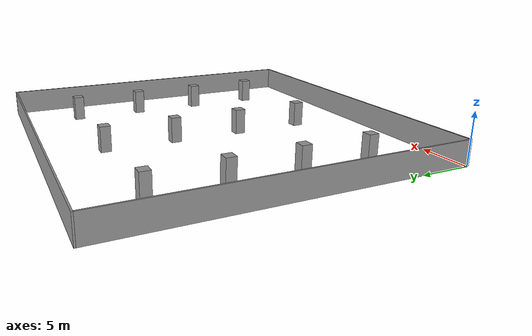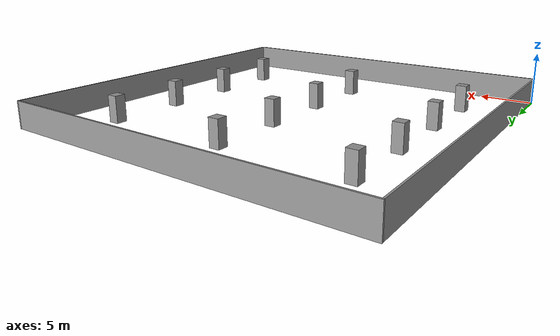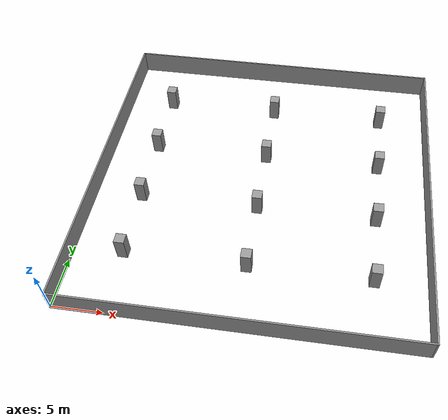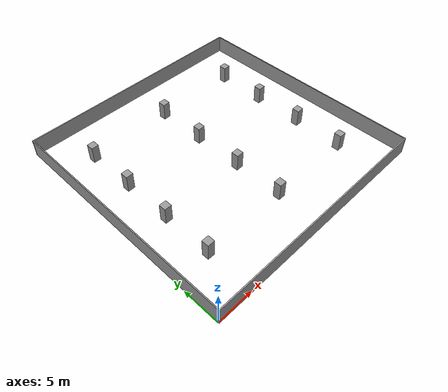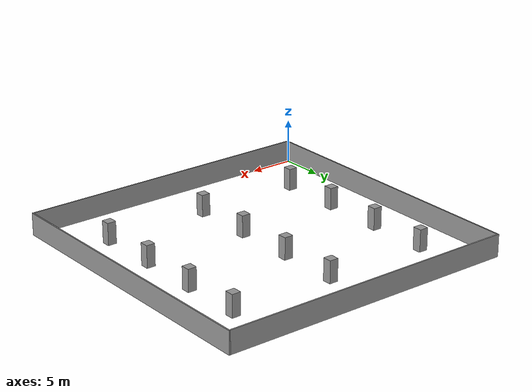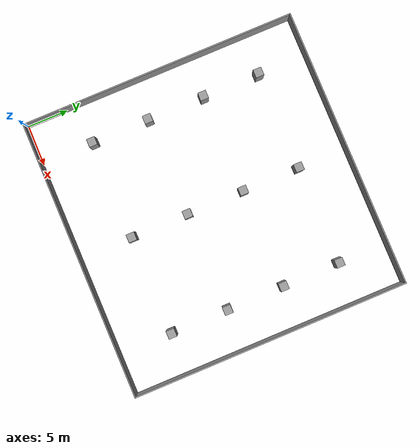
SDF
<?xml version='1.0'?>
<sdf version='1.6'>
  <model name='garage'>
    <pose frame=''>0 0 0 0 0 0</pose>

    <link name='Wall_1'>
      <collision name='Wall_1_Collision'>
        <geometry>
          <box>
            <size>34 0.15 2.5</size>
          </box>
        </geometry>
        <pose frame=''>0 0 1.25 0 -0 0</pose>
      </collision>
      <visual name='Wall_1_Visual'>
        <pose frame=''>0 0 1.25 0 -0 0</pose>
        <geometry>
          <box>
            <size>34 0.15 2.5</size>
          </box>
        </geometry>
        <material>
          <script>
            <uri>file://media/materials/scripts/gazebo.material</uri>
            <name>Gazebo/Grey</name>
          </script>
          <ambient>1 1 1 1</ambient>
        </material>
        <meta>
          <layer>0</layer>
        </meta>
      </visual>
      <pose frame=''>17 -0.075 0 0 0 0</pose>
    </link>

    <link name='Wall_2'>
      <collision name='Wall_2_Collision'>
        <geometry>
          <box>
            <size>0.15 33.8 2.5</size>
          </box>
        </geometry>
        <pose frame=''>0 0 1.25 0 -0 0</pose>
      </collision>
      <visual name='Wall_2_Visual'>
        <pose frame=''>0 0 1.25 0 -0 0</pose>
        <geometry>
          <box>
            <size>0.15 33.8 2.5</size>
          </box>
        </geometry>
        <material>
          <script>
            <uri>file://media/materials/scripts/gazebo.material</uri>
            <name>Gazebo/Grey</name>
          </script>
          <ambient>1 1 1 1</ambient>
        </material>
        <meta>
          <layer>0</layer>
        </meta>
      </visual>
      <pose frame=''>34.075 16.75 0 0 0 0</pose>
    </link>

    <link name='Wall_3'>
      <collision name='Wall_3_Collision'>
        <geometry>
          <box>
            <size>34 0.15 2.5</size>
          </box>
        </geometry>
        <pose frame=''>0 0 1.25 0 -0 0</pose>
      </collision>
      <visual name='Wall_3_Visual'>
        <pose frame=''>0 0 1.25 0 -0 0</pose>
        <geometry>
          <box>
            <size>34 0.15 2.5</size>
          </box>
        </geometry>
        <material>
          <script>
            <uri>file://media/materials/scripts/gazebo.material</uri>
            <name>Gazebo/Grey</name>
          </script>
          <ambient>1 1 1 1</ambient>
        </material>
        <meta>
          <layer>0</layer>
        </meta>
      </visual>
      <pose frame=''>17 33.575 0 0 0 0</pose>
    </link>

    <link name='Wall_4'>
      <collision name='Wall_4_Collision'>
        <geometry>
          <box>
            <size>0.15 33.5 2.5</size>
          </box>
        </geometry>
        <pose frame=''>0 0 1.25 0 -0 0</pose>
      </collision>
      <visual name='Wall_4_Visual'>
        <pose frame=''>0 0 1.25 0 -0 0</pose>
        <geometry>
          <box>
            <size>0.15 33.5 2.5</size>
          </box>
        </geometry>
        <material>
          <script>
            <uri>file://media/materials/scripts/gazebo.material</uri>
            <name>Gazebo/Grey</name>
          </script>
          <ambient>1 1 1 1</ambient>
        </material>
        <meta>
          <layer>0</layer>
        </meta>
      </visual>
      <pose frame=''>0.075 16.75 0 0 0 0</pose>
    </link>

    <link name='pillar_1'>
      <collision name='pillar_1_Collision'>
        <geometry>
          <box>
            <size>1 1 2.5</size>
          </box>
        </geometry>
        <pose frame=''>0 0 1.25 0 -0 0</pose>
      </collision>
      <visual name='pillar_1_Visual'>
        <pose frame=''>0 0 1.25 0 -0 0</pose>
        <geometry>
          <box>
            <size>1 1 2.5</size>
          </box>
        </geometry>
        <material>
          <script>
            <uri>file://media/materials/scripts/gazebo.material</uri>
            <name>Gazebo/Grey</name>
          </script>
          <ambient>1 1 1 1</ambient>
        </material>
        <meta>
          <layer>0</layer>
        </meta>
      </visual>
      <pose frame=''>5 6.5 0 0 0 0</pose>
    </link>

    <link name='pillar_2'>
      <collision name='pillar_2_Collision'>
        <geometry>
          <box>
            <size>1 1 2.5</size>
          </box>
        </geometry>
        <pose frame=''>0 0 1.25 0 -0 0</pose>
      </collision>
      <visual name='pillar_2_Visual'>
        <pose frame=''>0 0 1.25 0 -0 0</pose>
        <geometry>
          <box>
            <size>1 1 2.5</size>
          </box>
        </geometry>
        <material>
          <script>
            <uri>file://media/materials/scripts/gazebo.material</uri>
            <name>Gazebo/Grey</name>
          </script>
          <ambient>1 1 1 1</ambient>
        </material>
        <meta>
          <layer>0</layer>
        </meta>
      </visual>
      <pose frame=''>5 13.5 0 0 0 0</pose>
    </link>

    <link name='pillar_3'>
      <collision name='pillar_3_Collision'>
        <geometry>
          <box>
            <size>1 1 2.5</size>
          </box>
        </geometry>
        <pose frame=''>0 0 1.25 0 -0 0</pose>
      </collision>
      <visual name='pillar_3_Visual'>
        <pose frame=''>0 0 1.25 0 -0 0</pose>
        <geometry>
          <box>
            <size>1 1 2.5</size>
          </box>
        </geometry>
        <material>
          <script>
            <uri>file://media/materials/scripts/gazebo.material</uri>
            <name>Gazebo/Grey</name>
          </script>
          <ambient>1 1 1 1</ambient>
        </material>
        <meta>
          <layer>0</layer>
        </meta>
      </visual>
      <pose frame=''>5 20.5 0 0 0 0</pose>
    </link>

     <link name='pillar_4'>
      <collision name='pillar_4_Collision'>
        <geometry>
          <box>
            <size>1 1 2.5</size>
          </box>
        </geometry>
        <pose frame=''>0 0 1.25 0 -0 0</pose>
      </collision>
      <visual name='pillar_4_Visual'>
        <pose frame=''>0 0 1.25 0 -0 0</pose>
        <geometry>
          <box>
            <size>1 1 2.5</size>
          </box>
        </geometry>
        <material>
          <script>
            <uri>file://media/materials/scripts/gazebo.material</uri>
            <name>Gazebo/Grey</name>
          </script>
          <ambient>1 1 1 1</ambient>
        </material>
        <meta>
          <layer>0</layer>
        </meta>
      </visual>
      <pose frame=''>5 27.5 0 0 0 0</pose>
    </link>

    <link name='pillar_5'>
      <collision name='pillar_5_Collision'>
        <geometry>
          <box>
            <size>1 1 2.5</size>
          </box>
        </geometry>
        <pose frame=''>0 0 1.25 0 -0 0</pose>
      </collision>
      <visual name='pillar_5_Visual'>
        <pose frame=''>0 0 1.25 0 -0 0</pose>
        <geometry>
          <box>
            <size>1 1 2.5</size>
          </box>
        </geometry>
        <material>
          <script>
            <uri>file://media/materials/scripts/gazebo.material</uri>
            <name>Gazebo/Grey</name>
          </script>
          <ambient>1 1 1 1</ambient>
        </material>
        <meta>
          <layer>0</layer>
        </meta>
      </visual>
      <pose frame=''>17 6.5 0 0 0 0</pose>
    </link>

    <link name='pillar_6'>
      <collision name='pillar_6_Collision'>
        <geometry>
          <box>
            <size>1 1 2.5</size>
          </box>
        </geometry>
        <pose frame=''>0 0 1.25 0 -0 0</pose>
      </collision>
      <visual name='pillar_6_Visual'>
        <pose frame=''>0 0 1.25 0 -0 0</pose>
        <geometry>
          <box>
            <size>1 1 2.5</size>
          </box>
        </geometry>
        <material>
          <script>
            <uri>file://media/materials/scripts/gazebo.material</uri>
            <name>Gazebo/Grey</name>
          </script>
          <ambient>1 1 1 1</ambient>
        </material>
        <meta>
          <layer>0</layer>
        </meta>
      </visual>
      <pose frame=''>17 13.5 0 0 0 0</pose>
    </link>

    <link name='pillar_7'>
      <collision name='pillar_7_Collision'>
        <geometry>
          <box>
            <size>1 1 2.5</size>
          </box>
        </geometry>
        <pose frame=''>0 0 1.25 0 -0 0</pose>
      </collision>
      <visual name='pillar_7_Visual'>
        <pose frame=''>0 0 1.25 0 -0 0</pose>
        <geometry>
          <box>
            <size>1 1 2.5</size>
          </box>
        </geometry>
        <material>
          <script>
            <uri>file://media/materials/scripts/gazebo.material</uri>
            <name>Gazebo/Grey</name>
          </script>
          <ambient>1 1 1 1</ambient>
        </material>
        <meta>
          <layer>0</layer>
        </meta>
      </visual>
      <pose frame=''>17 20.5 0 0 0 0</pose>
    </link>

     <link name='pillar_8'>
      <collision name='pillar_8_Collision'>
        <geometry>
          <box>
            <size>1 1 2.5</size>
          </box>
        </geometry>
        <pose frame=''>0 0 1.25 0 -0 0</pose>
      </collision>
      <visual name='pillar_8_Visual'>
        <pose frame=''>0 0 1.25 0 -0 0</pose>
        <geometry>
          <box>
            <size>1 1 2.5</size>
          </box>
        </geometry>
        <material>
          <script>
            <uri>file://media/materials/scripts/gazebo.material</uri>
            <name>Gazebo/Grey</name>
          </script>
          <ambient>1 1 1 1</ambient>
        </material>
        <meta>
          <layer>0</layer>
        </meta>
      </visual>
      <pose frame=''>17 27.5 0 0 0 0</pose>
    </link>

    <link name='pillar_9'>
      <collision name='pillar_9_Collision'>
        <geometry>
          <box>
            <size>1 1 2.5</size>
          </box>
        </geometry>
        <pose frame=''>0 0 1.25 0 -0 0</pose>
      </collision>
      <visual name='pillar_9_Visual'>
        <pose frame=''>0 0 1.25 0 -0 0</pose>
        <geometry>
          <box>
            <size>1 1 2.5</size>
          </box>
        </geometry>
        <material>
          <script>
            <uri>file://media/materials/scripts/gazebo.material</uri>
            <name>Gazebo/Grey</name>
          </script>
          <ambient>1 1 1 1</ambient>
        </material>
        <meta>
          <layer>0</layer>
        </meta>
      </visual>
      <pose frame=''>29 6.5 0 0 0 0</pose>
    </link>

    <link name='pillar_10'>
      <collision name='pillar_10_Collision'>
        <geometry>
          <box>
            <size>1 1 2.5</size>
          </box>
        </geometry>
        <pose frame=''>0 0 1.25 0 -0 0</pose>
      </collision>
      <visual name='pillar_10_Visual'>
        <pose frame=''>0 0 1.25 0 -0 0</pose>
        <geometry>
          <box>
            <size>1 1 2.5</size>
          </box>
        </geometry>
        <material>
          <script>
            <uri>file://media/materials/scripts/gazebo.material</uri>
            <name>Gazebo/Grey</name>
          </script>
          <ambient>1 1 1 1</ambient>
        </material>
        <meta>
          <layer>0</layer>
        </meta>
      </visual>
      <pose frame=''>29 13.5 0 0 0 0</pose>
    </link>

    <link name='pillar_1'>
      <collision name='pillar_1_Collision'>
        <geometry>
          <box>
            <size>1 1 2.5</size>
          </box>
        </geometry>
        <pose frame=''>0 0 1.25 0 -0 0</pose>
      </collision>
      <visual name='pillar_11_Visual'>
        <pose frame=''>0 0 1.25 0 -0 0</pose>
        <geometry>
          <box>
            <size>1 1 2.5</size>
          </box>
        </geometry>
        <material>
          <script>
            <uri>file://media/materials/scripts/gazebo.material</uri>
            <name>Gazebo/Grey</name>
          </script>
          <ambient>1 1 1 1</ambient>
        </material>
        <meta>
          <layer>0</layer>
        </meta>
      </visual>
      <pose frame=''>29 20.5 0 0 0 0</pose>
    </link>

     <link name='pillar_12'>
      <collision name='pillar_12_Collision'>
        <geometry>
          <box>
            <size>1 1 2.5</size>
          </box>
        </geometry>
        <pose frame=''>0 0 1.25 0 -0 0</pose>
      </collision>
      <visual name='pillar_12_Visual'>
        <pose frame=''>0 0 1.25 0 -0 0</pose>
        <geometry>
          <box>
            <size>1 1 2.5</size>
          </box>
        </geometry>
        <material>
          <script>
            <uri>file://media/materials/scripts/gazebo.material</uri>
            <name>Gazebo/Grey</name>
          </script>
          <ambient>1 1 1 1</ambient>
        </material>
        <meta>
          <layer>0</layer>
        </meta>
      </visual>
      <pose frame=''>29 27.5 0 0 0 0</pose>
    </link>

    <static>1</static>
  </model>
</sdf>
